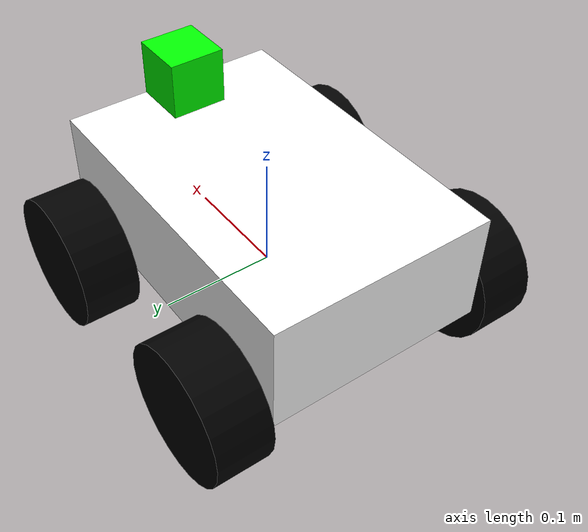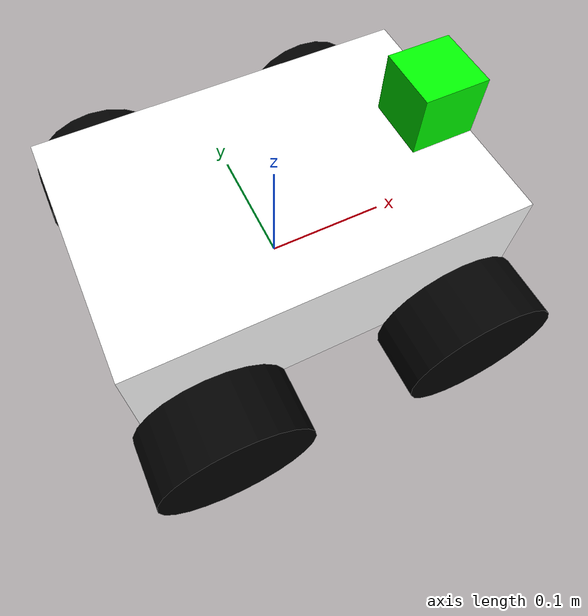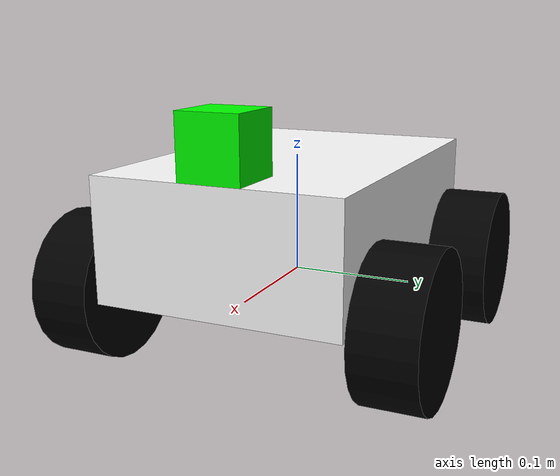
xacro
<?xml version="1.0"?>

<robot name="robot" xmlns:xacro="http://www.ros.org/wiki/xacro">

	<xacro:property name="length_wheel" value="0.05" />
	<xacro:property name="radius_wheel" value="0.06" />
	<xacro:property name="camera_link" value="0.05" />
        <xacro:property name="PI" value="3.1415926"/>
	<xacro:macro name="default_inertial" params="mass">
               <inertial>
                       <mass value="${mass}" />
                       <inertia ixx="0.01" ixy="0.0"
                                ixz="0.0"
                                iyy="0.01" iyz="0.0"
                                izz="0.01" />
               </inertial>
	</xacro:macro>
    <link name="dummy">
    </link>
	<link name="base_footprint">
   		<visual>
			<geometry>
      				<box size="0.001 0.001 0.001"/>
     			</geometry>
			<origin rpy="0 0 0" xyz="0 0 0"/>
   		</visual>
		<xacro:default_inertial mass="0.0001"/>
 	</link>
   <joint name="dummy_joint" type="fixed">
     <parent link="dummy"/>
     <child link="base_footprint"/>
   </joint>

	<gazebo reference="base_footprint">
		<material>Gazebo/Green</material>
		<turnGravityOff>false</turnGravityOff>
	</gazebo>

	<joint name="base_footprint_joint" type="fixed">
		<origin xyz="0 0 0" />
		<parent link="base_footprint" />
		<child link="base_link" />
	</joint>

	<link name="base_link">
   		<visual>
			<geometry>
      				<box size="0.2 .3 .1"/>
     			</geometry>
			<origin rpy="0 0 ${PI/2}" xyz="0 0 0.05"/>
			<material name="white">　　　
				<color rgba="1 1 1 1"/>
			</material>
   		</visual>
		<collision>
			<geometry>
       				<box size="0.2 .3 0.1"/>
			</geometry>
		</collision>
                <xacro:default_inertial mass="8.2"/>
 	</link>

 	<link name="wheel_1">
   		<visual>
     			<geometry>
       				<cylinder length="${length_wheel}" radius="${radius_wheel}"/>
     			</geometry>
			<origin rpy="0 0 0" xyz="0 0 0"/>
   			<material name="black">
				<color rgba="0 0 0 1"/>
			</material>
		</visual>
		<collision>
			<geometry>
       				<cylinder length="${length_wheel}" radius="${radius_wheel}"/>
			</geometry>
		</collision>
		  <mu1>0.5</mu1>
		    <mu2>0.5</mu2>
		<xacro:default_inertial mass="0.5"/>
 	</link>

 	<link name="wheel_2">
   		<visual>
     			<geometry>
       				<cylinder length="${length_wheel}" radius="${radius_wheel}"/>
     			</geometry>
			<origin rpy="0 0 0" xyz="0 0 0"/>
   			<material name="black"/>
   		</visual>
		<collision>
			<geometry>
       				<cylinder length="${length_wheel}" radius="${radius_wheel}"/>
			</geometry>
		</collision>
		   <mu1>0.5</mu1>
		    <mu2>0.5</mu2>
		<xacro:default_inertial mass="0.5"/>

 	</link>

 	<link name="wheel_3">
   		<visual>
     			<geometry>
       				<cylinder length="${length_wheel}" radius="${radius_wheel}"/>
     			</geometry>

			<origin rpy="0 0 0" xyz="0 0 0"/>
   			<material name="black"/>
   		</visual>
		<collision>
			<geometry>
       				<cylinder length="${length_wheel}" radius="${radius_wheel}"/>
			</geometry>
		</collision>
		 <mu1>0.5</mu1>
		    <mu2>0.5</mu2>
		<xacro:default_inertial mass="0.5"/>
 	</link>

 	<link name="wheel_4">
   		<visual>
     			<geometry>
       				<cylinder length="${length_wheel}" radius="${radius_wheel}"/>
     			</geometry>
			<origin rpy="0 0 0" xyz="0 0 0" />
   			<material name="black"/>
   		</visual>
		<collision>
			<geometry>
       				<cylinder length="${length_wheel}" radius="${radius_wheel}"/>
			</geometry>
		</collision>
		   <mu1>0.5</mu1>
		    <mu2>0.5</mu2>
		<xacro:default_inertial mass="0.5"/>

 	</link>

 <joint name="base_to_wheel1" type="continuous">
   <parent link="base_link"/>
   <child link="wheel_1"/>
   <origin rpy="${-PI/2} 0 0" xyz="0.1 0.13 0"/>
   <axis xyz="0 0 1" />
 </joint>

 <joint name="base_to_wheel2" type="continuous">
   <axis xyz="0 0 1" />
   <anchor xyz="0 0 0" />
   <limit effort="100" velocity="100" />
   <parent link="base_link"/>
   <child link="wheel_2"/>
   <origin rpy="${-PI/2} 0 0" xyz="-0.1 0.13 0"/>
</joint>

 <joint name="base_to_wheel3" type="continuous">
   <parent link="base_link"/>
   <axis xyz="0 0 1" />
   <child link="wheel_3"/>
   <origin rpy="${-PI/2} 0 0" xyz="0.1 -0.13 0"/>
 </joint>

 <joint name="base_to_wheel4" type="continuous">
   <parent link="base_link"/>
   <axis xyz="0 0 1" />
   <child link="wheel_4"/>
   <origin rpy="${-PI/2} 0 0" xyz="-0.1 -0.13 0"/>
 </joint>

 <!-- IMU joint -->
  <joint name="imu_joint" type="fixed">
    <axis xyz="0 1 0" />
    <origin xyz="0.125 0 0.125" rpy="0 0 0"/>
    <parent link="base_link"/>
    <child link="imu_link"/>
  </joint>

  <!-- IMU -->
  <link name="imu_link">
    <collision>
      <origin xyz="0 0 0" rpy="0 0 0"/>
      <geometry>
  <box size="0.05 0.05 0.05"/>
      </geometry>
    </collision>

    <visual>
      <origin xyz="0 0 0" rpy="0 0 0"/>
      <geometry>
  <box size="0.05 0.05 0.05"/>
      </geometry>
      <material name="green">
  <color rgba="0 1 0 1"/>
      </material>
    </visual>

    <inertial>
      <mass value="1e-2" />
      <origin xyz="0 0 0" rpy="0 0 0"/>
      <inertia ixx="1e-6" ixy="0" ixz="0" iyy="1e-6" iyz="0" izz="1e-6" />
    </inertial>
  </link>

     <!-- IMU -->

   <!-- hokuyo -->

<!-- gazebo插件设置相关 -->

   <gazebo reference="base_link">
    <material>Gazebo/Orange</material>
  </gazebo>

 <gazebo reference="wheel_1">
        <material>Gazebo/Red</material>
 </gazebo>

 <gazebo reference="wheel_2">
        <material>Gazebo/Black</material>
 </gazebo>

 <gazebo reference="wheel_3">
        <material>Gazebo/Red</material>
 </gazebo>

 <gazebo reference="wheel_4">
        <material>Gazebo/Black</material>
 </gazebo>

  <!-- ros_control plugin -->

  <!-- Drive controller -->

  <!-- Drive controller -->
<gazebo>

<plugin name="mecanum_controller" filename="libgazebo_ros_planar_move.so">
 <alwaysOn>true</alwaysOn>
    <updateRate>100.0</updateRate>
    <robotNamespace>/</robotNamespace>
<commandTopic>cmd_vel</commandTopic>
<odometryTopic>/odom</odometryTopic>
<odometryFrame>odom</odometryFrame>
<leftFrontJoint>base_to_wheel1</leftFrontJoint>
<rightFrontJoint>base_to_wheel3</rightFrontJoint>
<leftRearJoint>base_to_wheel2</leftRearJoint>
<rightRearJoint>base_to_wheel4</rightRearJoint>
<wheelSeparation>0.26</wheelSeparation>
<wheelDiameter>0.12</wheelDiameter>
<odometryRate>20.0</odometryRate>
<torque>2</torque>
<robotBaseFrame>base_footprint</robotBaseFrame>
<publishOdomTF>true</publishOdomTF>
<broadcastTF>true</broadcastTF>
</plugin>
</gazebo>

<!-- imu控制 -->

   <gazebo reference="imu_link">
        <material>Gazebo/Orange</material>
        <gravity>true</gravity>
        <sensor name="imu_sensor" type="imu">
            <always_on>true</always_on>
            <update_rate>100</update_rate>
            <visualize>true</visualize>
            <topic>__default_topic__</topic>
            <plugin filename="libgazebo_ros_imu_sensor.so" name="imu_plugin">
                <topicName>/livox/imu</topicName>
                <bodyName>imu_link</bodyName>
                <updateRateHZ>100.0</updateRateHZ>
                <gaussianNoise>0.0</gaussianNoise>
                <xyzOffset>0 0 0</xyzOffset>
                <rpyOffset>0 0 0</rpyOffset>
                <frameName>imu_link</frameName>
            </plugin>
            <pose>0 0 0 0 0 0</pose>
        </sensor>
    </gazebo>

<!-- gazebo插件设置相关结束 -->

</robot>
